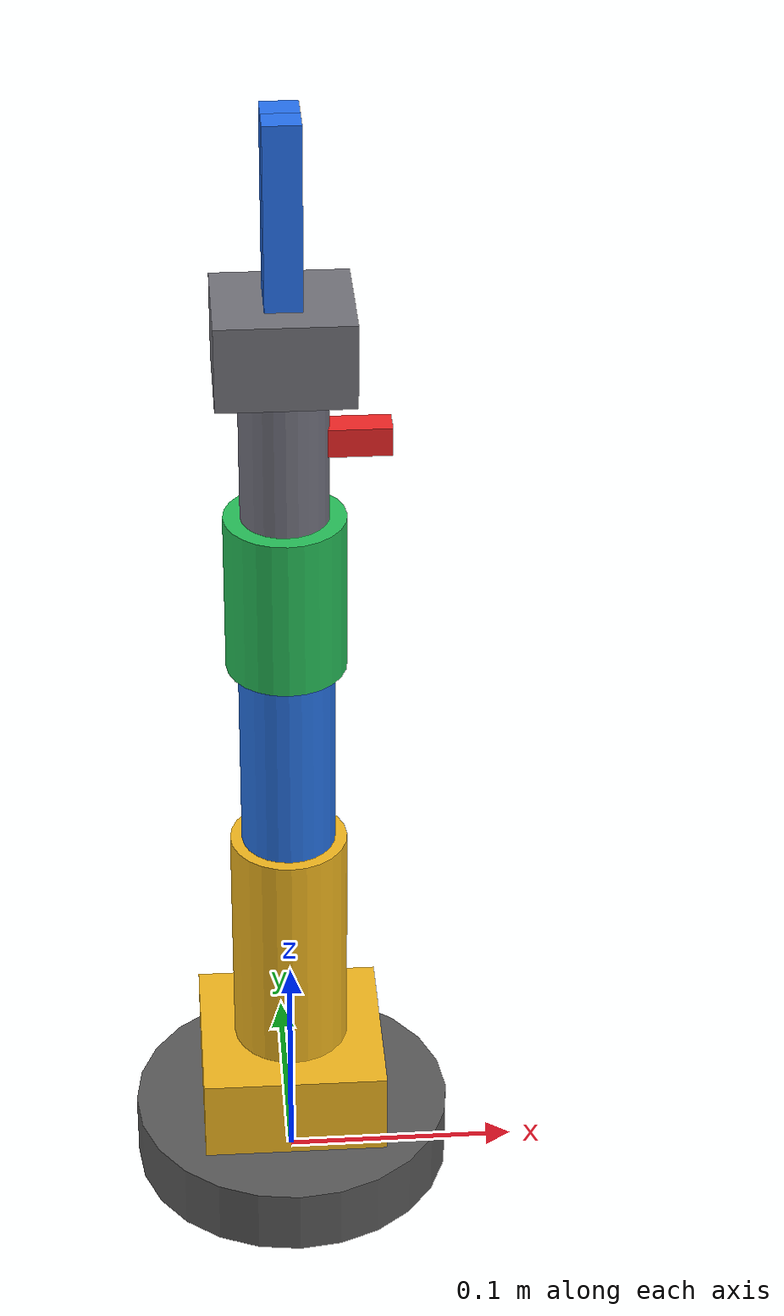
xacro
<?xml version="1.0"?>
<robot xmlns:xacro="http://www.ros.org/wiki/xacro"
       name="my_robot_arm">

  <xacro:arg name="hardware_mode" default="mock"/>
  <xacro:arg name="serial_port" default="/dev/ttyUSB0"/>
  <xacro:arg name="enable_motion" default="false"/>
  <xacro:arg name="limits_verified" default="false"/>
  <xacro:property name="hardware_mode" value="$(arg hardware_mode)"/>
  <!-- 1. Robot Parameters                       -->

  <xacro:property name="base_height" value="0.0300"/>
  <xacro:property name="shoulder_height" value="0.0384"/>
  <xacro:property name="upper_arm_length" value="0.1051"/>
  <xacro:property name="forearm_length" value="0.0872"/>

  <xacro:property name="wrist_pitch_length" value="0.0695"/>
  <xacro:property name="measured_a_to_fingertip_c" value="0.110"/>
  <xacro:property name="wrist_rotation_length" value="0.06"/>

  <xacro:property name="gripper_palm_length" value="0.035"/>
  <xacro:property name="gripper_finger_length" value="0.075"/>
  <xacro:property name="gripper_finger_width" value="0.012"/>

  <!-- 单侧夹指最大行程 30 mm -->
  <xacro:property name="gripper_half_open_max" value="0.030"/>

  <!-- 2. Base Link                              -->

  <link name="base_link">

    <visual>
      <origin xyz="0 0 ${base_height / 2}" rpy="0 0 0"/>

      <geometry>
        <cylinder radius="0.07"
                  length="${base_height}"/>
      </geometry>

      <material name="base_gray">
        <color rgba="0.35 0.35 0.35 1.0"/>
      </material>
    </visual>

    <collision>
      <origin xyz="0 0 ${base_height / 2}" rpy="0 0 0"/>

      <geometry>
        <cylinder radius="0.07"
                  length="${base_height}"/>
      </geometry>
    </collision>

  </link>

  <!-- 3. Base Joint                             -->

  <!-- ID 000: 绕 Z 轴旋转 -->
  <joint name="base_joint" type="revolute">

    <parent link="base_link"/>
    <child link="shoulder_mount"/>

    <origin xyz="0 0 ${base_height}" rpy="0 0 0"/>

    <axis xyz="0 0 1"/>

    <!-- 000: raw1600 = q0。沿用旧模型正方向及 0.00235619449 rad/raw，
         raw500..2500 对应下列非对称限位；比例及硬件转换需实机复核。 -->
    <limit lower="-2.591813939"
           upper="2.120575041"
           effort="10.0"
           velocity="1.0"/>

  </joint>

  <!-- 4. Shoulder Mount                         -->

  <link name="shoulder_mount">

    <visual>
      <origin xyz="0 0 ${shoulder_height / 2}" rpy="0 0 0"/>

      <geometry>
        <box size="0.08 0.08 ${shoulder_height}"/>
      </geometry>

      <material name="mount_yellow">
        <color rgba="0.95 0.72 0.12 1.0"/>
      </material>
    </visual>

    <collision>
      <origin xyz="0 0 ${shoulder_height / 2}" rpy="0 0 0"/>

      <geometry>
        <box size="0.08 0.08 ${shoulder_height}"/>
      </geometry>
    </collision>

  </link>

  <!-- 5. Shoulder Joint                         -->

  <!-- ID 001: 绕局部 Y 轴旋转 -->
  <joint name="shoulder_joint" type="revolute">

    <parent link="shoulder_mount"/>
    <child link="upper_arm_link"/>

    <origin xyz="0 0 ${shoulder_height}"
            rpy="0 0 0"/>

    <axis xyz="0 1 0"/>

    <!-- raw: 700~2300, direction: -1 -->
    <limit lower="-1.88495559"
           upper="1.88495559"
           effort="10.0"
           velocity="1.0"/>

  </joint>

  <!-- 6. Upper Arm Link                         -->

  <link name="upper_arm_link">

    <visual>
      <origin xyz="0 0 ${upper_arm_length / 2}"
              rpy="0 0 0"/>

      <geometry>
        <cylinder radius="0.025"
                  length="${upper_arm_length}"/>
      </geometry>

      <material name="arm_yellow">
        <color rgba="0.95 0.72 0.12 1.0"/>
      </material>
    </visual>

    <!-- collision 与 visual 并列 -->
    <collision>
      <origin xyz="0 0 ${upper_arm_length / 2}"
              rpy="0 0 0"/>

      <geometry>
        <cylinder radius="0.025"
                  length="${upper_arm_length}"/>
      </geometry>
    </collision>

  </link>

  <!-- 7. Elbow Joint                            -->

  <!-- ID 002: 绕局部 Y 轴旋转 -->
  <joint name="elbow_joint" type="revolute">

    <parent link="upper_arm_link"/>
    <child link="forearm_link"/>

    <origin xyz="0 0 ${upper_arm_length}"
            rpy="0 0 0"/>

    <axis xyz="0 1 0"/>

    <limit lower="-2.35619449"
           upper="2.35619449"
           effort="10.0"
           velocity="1.0"/>

  </joint>

  <!-- 8. Forearm Link                           -->

  <link name="forearm_link">

    <visual>
      <origin xyz="0 0 ${forearm_length / 2}"
              rpy="0 0 0"/>

      <geometry>
        <cylinder radius="0.020"
                  length="${forearm_length}"/>
      </geometry>

      <material name="forearm_blue">
        <color rgba="0.15 0.45 0.90 1.0"/>
      </material>
    </visual>

    <collision>
      <origin xyz="0 0 ${forearm_length / 2}"
              rpy="0 0 0"/>

      <geometry>
        <cylinder radius="0.020"
                  length="${forearm_length}"/>
      </geometry>
    </collision>

  </link>

  <!-- 9. Wrist Pitch Joint                      -->

  <!-- ID 003: 绕局部 Y 轴俯仰 -->
  <joint name="wrist_pitch_joint" type="revolute">

    <parent link="forearm_link"/>
    <child link="wrist_pitch_link"/>

    <origin xyz="0 0 ${forearm_length}"
            rpy="0 0 0"/>

    <axis xyz="0 1 0"/>

    <limit lower="-2.35619449"
           upper="2.35619449"
           effort="10.0"
           velocity="1.0"/>

  </joint>

  <!-- 10. Wrist Pitch Link                      -->

  <link name="wrist_pitch_link">

    <visual>
      <origin xyz="0 0 ${wrist_pitch_length / 2}"
              rpy="0 0 0"/>

      <geometry>
        <cylinder radius="0.025"
                  length="${wrist_pitch_length}"/>
      </geometry>

      <material name="wrist_green">
        <color rgba="0.15 0.75 0.35 1.0"/>
      </material>
    </visual>

    <collision>
      <origin xyz="0 0 ${wrist_pitch_length / 2}"
              rpy="0 0 0"/>

      <geometry>
        <cylinder radius="0.025"
                  length="${wrist_pitch_length}"/>
      </geometry>
    </collision>

  </link>

  <!-- 11. Wrist Rotation Joint                  -->

  <!-- ID 004: 绕腕部局部 Z 轴旋转 -->
  <joint name="wrist_rotation_joint" type="revolute">

    <parent link="wrist_pitch_link"/>
    <child link="wrist_rotation_link"/>

    <origin xyz="0 0 ${wrist_pitch_length}"
            rpy="0 0 0"/>

    <axis xyz="0 0 1"/>

    <limit lower="-2.35619449"
           upper="2.35619449"
           effort="10.0"
           velocity="1.0"/>

  </joint>

  <!-- 12. Wrist Rotation Link                   -->

  <link name="wrist_rotation_link">

    <!-- 腕部主体 -->
    <visual>
      <origin xyz="0 0 ${wrist_rotation_length / 2}"
              rpy="0 0 0"/>

      <geometry>
        <cylinder radius="0.018"
                  length="${wrist_rotation_length}"/>
      </geometry>

      <material name="wrist_gray">
        <color rgba="0.45 0.45 0.50 1.0"/>
      </material>
    </visual>

    <!-- 用于观察腕部旋转的方向标记 -->
    <visual>
      <origin xyz="0.025 0 0.035"
              rpy="0 0 0"/>

      <geometry>
        <box size="0.035 0.012 0.012"/>
      </geometry>

      <material name="rotation_marker_red">
        <color rgba="0.95 0.15 0.15 1.0"/>
      </material>
    </visual>

    <!-- 碰撞模型只包含腕部主体 -->
    <collision>
      <origin xyz="0 0 ${wrist_rotation_length / 2}"
              rpy="0 0 0"/>

      <geometry>
        <cylinder radius="0.018"
                  length="${wrist_rotation_length}"/>
      </geometry>
    </collision>

  </link>

  <!-- 13. Tool Frame                            -->

  <!-- tool0 为旧模型安装占位坐标系，非标定 TCP。 -->
  <joint name="tool0_joint" type="fixed">

    <parent link="wrist_rotation_link"/>
    <child link="tool0"/>

    <origin xyz="0 0 ${wrist_rotation_length}"
            rpy="0 0 0"/>

  </joint>

  <link name="tool0"/>

  <!-- 14. Gripper Mount                         -->

  <joint name="gripper_mount_joint" type="fixed">

    <parent link="wrist_rotation_link"/>
    <child link="gripper_palm_link"/>

    <origin xyz="0 0 ${wrist_rotation_length}"
            rpy="0 0 0"/>

  </joint>

  <!-- 15. Gripper Palm                          -->

  <link name="gripper_palm_link">

    <visual>
      <origin xyz="0 0 ${gripper_palm_length / 2}"
              rpy="0 0 0"/>

      <geometry>
        <box size="0.055 0.050 ${gripper_palm_length}"/>
      </geometry>

      <material name="gripper_gray">
        <color rgba="0.45 0.45 0.48 1.0"/>
      </material>
    </visual>

    <collision>
      <origin xyz="0 0 ${gripper_palm_length / 2}"
              rpy="0 0 0"/>

      <geometry>
        <box size="0.055 0.050 ${gripper_palm_length}"/>
      </geometry>
    </collision>

  </link>

  <!-- 16. Left Finger Joint                     -->

  <joint name="left_finger_joint" type="prismatic">

    <parent link="gripper_palm_link"/>
    <child link="left_finger_link"/>

    <!-- 闭合时夹指内侧表面位于中心线 -->
    <origin
      xyz="0 ${gripper_finger_width / 2} ${gripper_palm_length}"
      rpy="0 0 0"/>

    <!-- 左夹指沿 +Y 方向张开 -->
    <axis xyz="0 1 0"/>

    <!-- 单侧行程: 0~30 mm -->
    <limit lower="0.0"
           upper="${gripper_half_open_max}"
           effort="10.0"
           velocity="0.02"/>

  </joint>

  <!-- 17. Left Finger Link                      -->

  <link name="left_finger_link">

    <visual>
      <origin xyz="0 0 ${gripper_finger_length / 2}"
              rpy="0 0 0"/>

      <geometry>
        <box size="0.015 ${gripper_finger_width}
                   ${gripper_finger_length}"/>
      </geometry>

      <material name="finger_blue">
        <color rgba="0.15 0.45 0.95 1.0"/>
      </material>
    </visual>

    <collision>
      <origin xyz="0 0 ${gripper_finger_length / 2}"
              rpy="0 0 0"/>

      <geometry>
        <box size="0.015 ${gripper_finger_width}
                   ${gripper_finger_length}"/>
      </geometry>
    </collision>

  </link>

  <!-- 18. Right Finger Joint                    -->

  <joint name="right_finger_joint" type="prismatic">

    <parent link="gripper_palm_link"/>
    <child link="right_finger_link"/>

    <origin
      xyz="0 ${-gripper_finger_width / 2} ${gripper_palm_length}"
      rpy="0 0 0"/>

    <axis xyz="0 1 0"/>

    <!-- 右夹指镜像左夹指运动 -->
    <mimic joint="left_finger_joint"
           multiplier="-1.0"
           offset="0.0"/>

    <limit lower="${-gripper_half_open_max}"
           upper="0.0"
           effort="10.0"
           velocity="0.02"/>

  </joint>

  <!-- 19. Right Finger Link                     -->

  <link name="right_finger_link">

    <visual>
      <origin xyz="0 0 ${gripper_finger_length / 2}"
              rpy="0 0 0"/>

      <geometry>
        <box size="0.015 ${gripper_finger_width}
                   ${gripper_finger_length}"/>
      </geometry>

      <material name="finger_blue">
        <color rgba="0.15 0.45 0.95 1.0"/>
      </material>
    </visual>

    <collision>
      <origin xyz="0 0 ${gripper_finger_length / 2}"
              rpy="0 0 0"/>

      <geometry>
        <box size="0.015 ${gripper_finger_width}
                   ${gripper_finger_length}"/>
      </geometry>
    </collision>

  </link>

  <!-- 20. Grasp Frame                           -->

  <!-- grasp_frame 为旧模型夹指中部占位，实际 TCP 的 XYZ 尚未测得。 -->
  <joint name="grasp_frame_joint" type="fixed">

    <parent link="gripper_palm_link"/>
    <child link="grasp_frame"/>

    <origin
      xyz="0 0 ${gripper_palm_length + gripper_finger_length / 2}"
      rpy="0 0 0"/>

  </joint>

  <link name="grasp_frame"/>

  <!-- 21. ros2_control Macro                    -->

  <xacro:macro name="mock_revolute_joint"
               params="joint_name initial">

    <joint name="${joint_name}">

      <command_interface name="position"/>

      <state_interface name="position">
        <param name="initial_value">${initial}</param>
      </state_interface>

      <state_interface name="velocity"/>

    </joint>

  </xacro:macro>

  <!-- 22. ros2_control Mock Hardware            -->

  <ros2_control name="ArmSystem" type="system">
    <hardware>
      <xacro:if value="${hardware_mode == 'real'}">
        <plugin>arm_hardware/ArmSystem</plugin>
        <param name="port">$(arg serial_port)</param>
        <param name="baud">115200</param>
        <param name="timeout_ms">40</param>
        <param name="max_feedback_age_ms">1200</param>
        <param name="max_step_raw">8</param>
        <param name="max_tracking_raw">80</param>
        <param name="move_time_ms">180</param>
        <param name="enable_motion">$(arg enable_motion)</param>
        <param name="limits_verified">$(arg limits_verified)</param>
      </xacro:if>
      <xacro:unless value="${hardware_mode == 'real'}">
        <plugin>mock_components/GenericSystem</plugin>
        <param name="calculate_dynamics">true</param>
      </xacro:unless>
    </hardware>

    <!-- Base: startup raw = 1600 -->
    <xacro:mock_revolute_joint
      joint_name="base_joint"
      initial="0.0"/>

    <!-- Shoulder: startup raw = 1900 -->
    <xacro:mock_revolute_joint
      joint_name="shoulder_joint"
      initial="-0.942477796"/>

    <!-- Elbow: startup raw = 2100 -->
    <xacro:mock_revolute_joint
      joint_name="elbow_joint"
      initial="1.413716694"/>

    <!-- Wrist Pitch: startup raw = 800 -->
    <xacro:mock_revolute_joint
      joint_name="wrist_pitch_joint"
      initial="1.649336144"/>

    <!-- Wrist Rotation: startup raw = 1500 -->
    <xacro:mock_revolute_joint
      joint_name="wrist_rotation_joint"
      initial="0.0"/>

    <!-- Gripper: raw 1500 = 35 mm total opening -->
    <!-- 单侧夹指初始位移 17.5 mm -->
    <joint name="left_finger_joint">

      <command_interface name="position"/>

      <state_interface name="position">
        <param name="initial_value">0.0175</param>
      </state_interface>

      <state_interface name="velocity"/>

    </joint>

    <!-- Mimic follower -->
    <joint name="right_finger_joint" mimic="true">

      <state_interface name="position">
        <param name="initial_value">-0.0175</param>
      </state_interface>

      <state_interface name="velocity"/>

    </joint>

  </ros2_control>

</robot>
